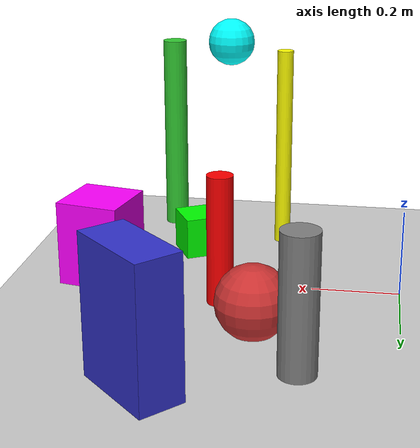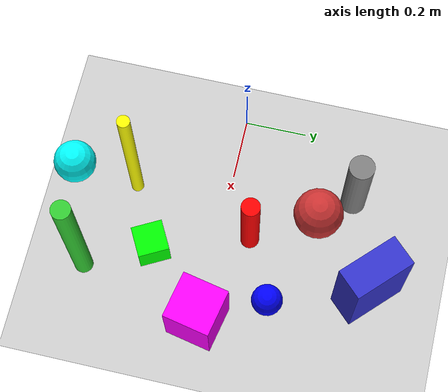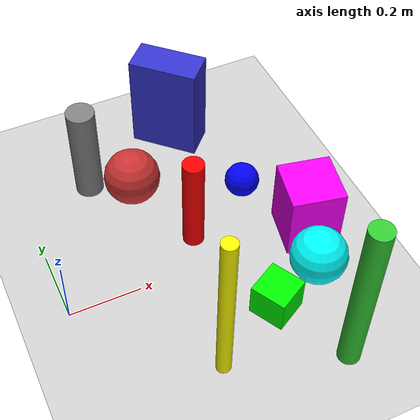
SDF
<?xml version="1.0" ?>
<sdf version="1.6">
  <world name="cluttered_world">
    <physics name="1ms" type="ignored">
      <max_step_size>0.001</max_step_size>
      <real_time_factor>1.0</real_time_factor>
    </physics>
    <plugin filename="libignition-gazebo-physics-system.so" name="ignition::gazebo::systems::Physics"/>
    <plugin filename="libignition-gazebo-user-commands-system.so" name="ignition::gazebo::systems::UserCommands"/>
    <plugin filename="libignition-gazebo-scene-broadcaster-system.so" name="ignition::gazebo::systems::SceneBroadcaster"/>

    <light type="directional" name="sun">
      <cast_shadows>true</cast_shadows>
      <pose>0 0 10 0 0 0</pose>
      <diffuse>0.8 0.8 0.8 1</diffuse>
      <specular>0.2 0.2 0.2 1</specular>
      <direction>-0.5 0.1 -0.9</direction>
    </light>

    <!-- Ground Plane -->
    <model name="ground_plane">
      <static>true</static>
      <link name="link">
        <collision name="collision">
          <geometry>
            <plane>
              <normal>0 0 1</normal>
              <size>100 100</size>
            </plane>
          </geometry>
        </collision>
        <visual name="visual">
          <geometry>
            <plane>
              <normal>0 0 1</normal>
              <size>100 100</size>
            </plane>
          </geometry>
          <material>
            <ambient>0.8 0.8 0.8 1</ambient>
            <diffuse>0.8 0.8 0.8 1</diffuse>
            <specular>0.8 0.8 0.8 1</specular>
          </material>
        </visual>
      </link>
    </model>

    <!-- Obstacles -->
    <model name="cyl_1"><static>true</static><pose>0.4 0.1 0.15 0 0 0</pose>
      <link name="l"><collision name="c"><geometry><cylinder><radius>0.03</radius><length>0.3</length></cylinder></geometry></collision>
      <visual name="v"><geometry><cylinder><radius>0.03</radius><length>0.3</length></cylinder></geometry><material><ambient>1 0 0 1</ambient><diffuse>1 0 0 1</diffuse></material></visual></link>
    </model>

    <model name="box_1"><static>true</static><pose>0.5 -0.2 0.05 0 0 0.5</pose>
      <link name="l"><collision name="c"><geometry><box><size>0.1 0.1 0.1</size></box></geometry></collision>
      <visual name="v"><geometry><box><size>0.1 0.1 0.1</size></box></geometry><material><ambient>0 1 0 1</ambient><diffuse>0 1 0 1</diffuse></material></visual></link>
    </model>

    <model name="sph_1"><static>true</static><pose>0.6 0.2 0.05 0 0 0</pose>
      <link name="l"><collision name="c"><geometry><sphere><radius>0.05</radius></sphere></geometry></collision>
      <visual name="v"><geometry><sphere><radius>0.05</radius></sphere></geometry><material><ambient>0 0 1 1</ambient><diffuse>0 0 1 1</diffuse></material></visual></link>
    </model>

    <model name="cyl_2"><static>true</static><pose>0.3 -0.3 0.25 0 0 0</pose>
      <link name="l"><collision name="c"><geometry><cylinder><radius>0.02</radius><length>0.5</length></cylinder></geometry></collision>
      <visual name="v"><geometry><cylinder><radius>0.02</radius><length>0.5</length></cylinder></geometry><material><ambient>1 1 0 1</ambient><diffuse>1 1 0 1</diffuse></material></visual></link>
    </model>

    <model name="box_2"><static>true</static><pose>0.7 0.0 0.1 0 0 -0.2</pose>
      <link name="l"><collision name="c"><geometry><box><size>0.15 0.15 0.2</size></box></geometry></collision>
      <visual name="v"><geometry><box><size>0.15 0.15 0.2</size></box></geometry><material><ambient>1 0 1 1</ambient><diffuse>1 0 1 1</diffuse></material></visual></link>
    </model>

    <model name="sph_2"><static>true</static><pose>0.45 -0.4 0.5 0 0 0</pose>
      <link name="l">
      <collision name="c"><geometry><sphere><radius>0.06</radius></sphere></geometry></collision>
      <visual name="v"><geometry><sphere><radius>0.06</radius></sphere></geometry><material><ambient>0 1 1 1</ambient><diffuse>0 1 1 1</diffuse></material></visual></link>
    </model>

    <model name="cyl_3"><static>true</static><pose>0.2 0.4 0.15 0 0 0</pose>
      <link name="l"><collision name="c"><geometry><cylinder><radius>0.04</radius><length>0.3</length></cylinder></geometry></collision>
      <visual name="v"><geometry><cylinder><radius>0.04</radius><length>0.3</length></cylinder></geometry><material><ambient>0.5 0.5 0.5 1</ambient><diffuse>0.5 0.5 0.5 1</diffuse></material></visual></link>
    </model>

    <model name="cyl_4"><static>true</static><pose>0.6 -0.4 0.25 0 0 0</pose>
      <link name="l"><collision name="c"><geometry><cylinder><radius>0.03</radius><length>0.5</length></cylinder></geometry></collision>
      <visual name="v"><geometry><cylinder><radius>0.03</radius><length>0.5</length></cylinder></geometry><material><ambient>0.2 0.8 0.2 1</ambient><diffuse>0.2 0.8 0.2 1</diffuse></material></visual></link>
    </model>

    <model name="sph_3"><static>true</static><pose>0.3 0.3 0.1 0 0 0</pose>
      <link name="l"><collision name="c"><geometry><sphere><radius>0.08</radius></sphere></geometry></collision>
      <visual name="v"><geometry><sphere><radius>0.08</radius></sphere></geometry><material><ambient>0.8 0.2 0.2 1</ambient><diffuse>0.8 0.2 0.2 1</diffuse></material></visual></link>
    </model>

    <model name="box_3"><static>true</static><pose>0.5 0.5 0.15 0 0 0.8</pose>
      <link name="l"><collision name="c"><geometry><box><size>0.1 0.2 0.3</size></box></geometry></collision>
      <visual name="v"><geometry><box><size>0.1 0.2 0.3</size></box></geometry><material><ambient>0.2 0.2 0.8 1</ambient><diffuse>0.2 0.2 0.8 1</diffuse></material></visual></link>
    </model>

  </world>
</sdf>
